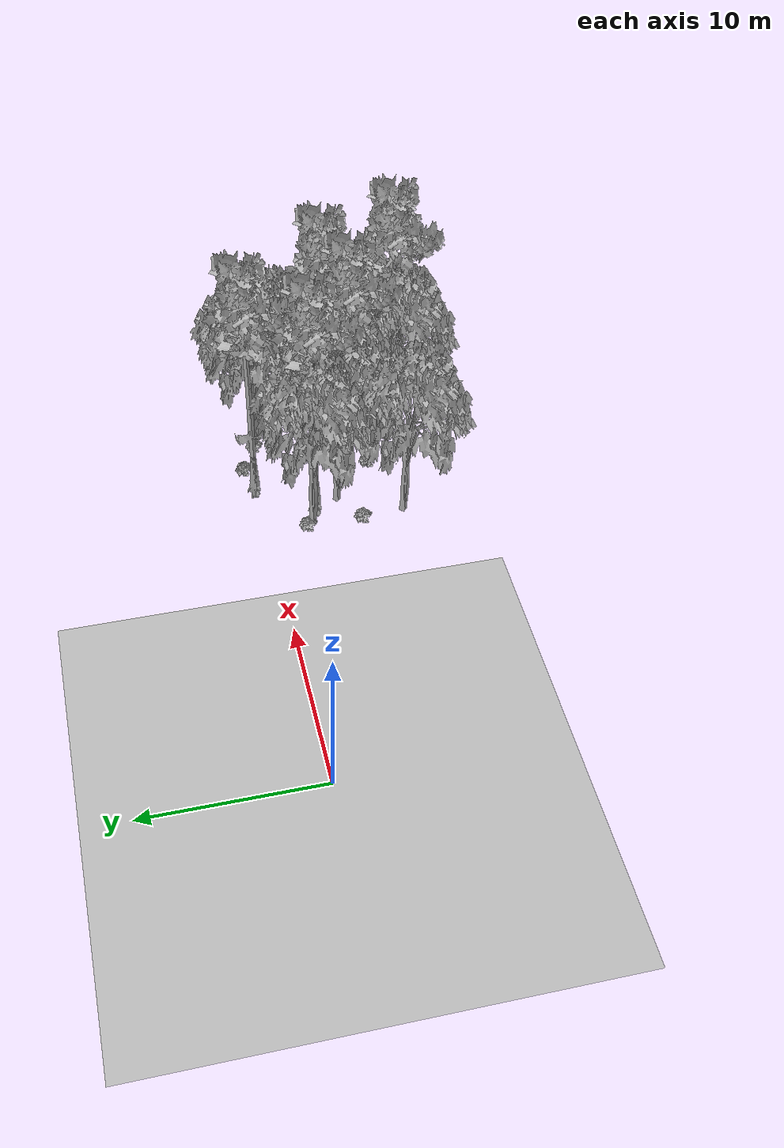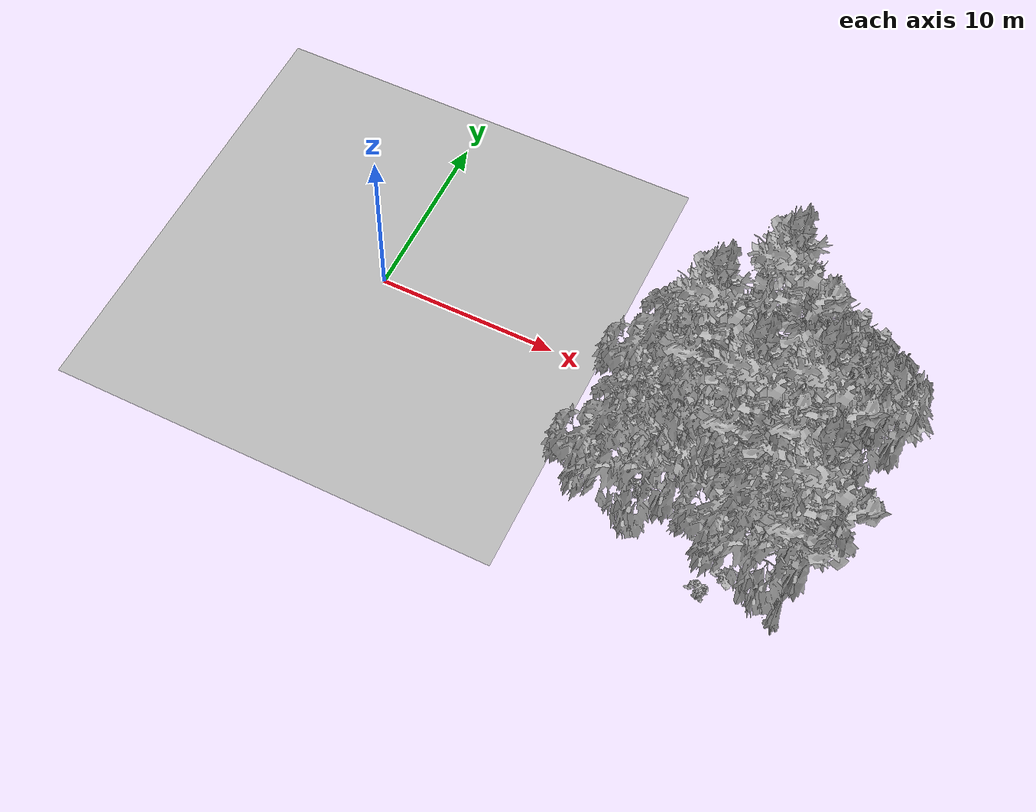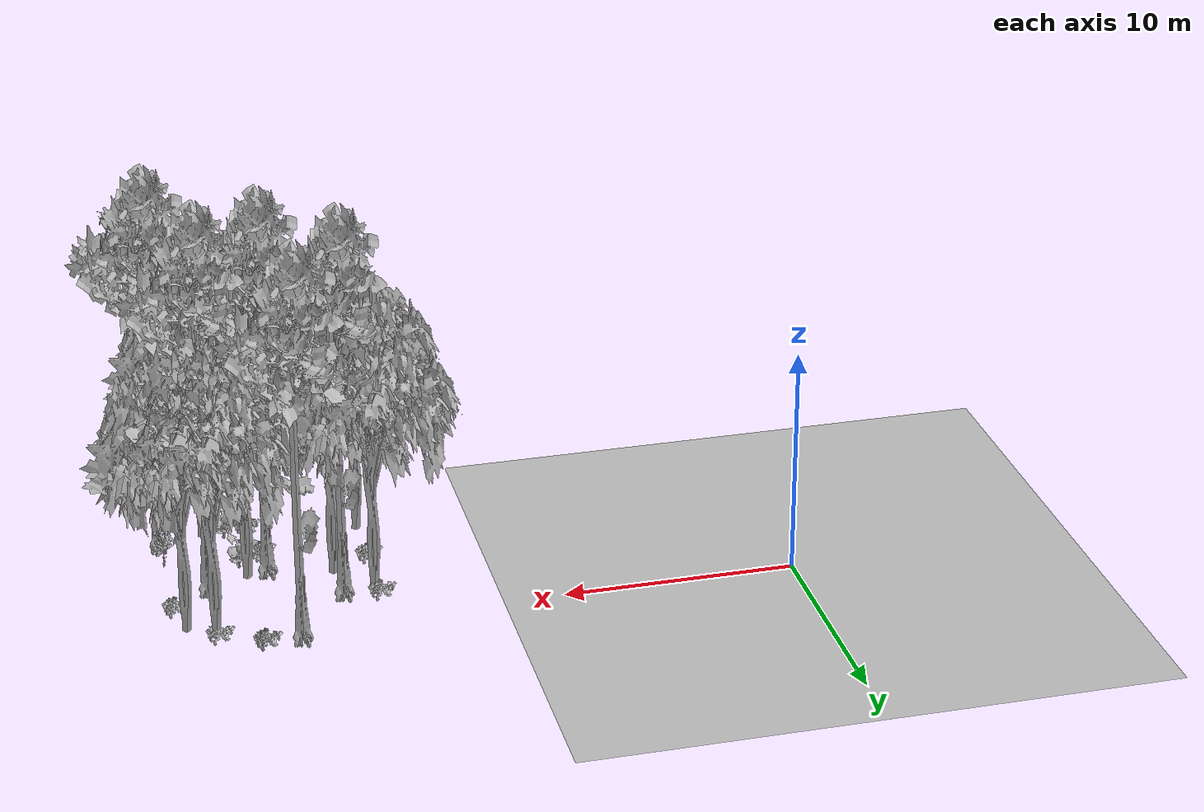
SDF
<sdf version="1.7">
 <world name="default">
  <model name="ground_plane">
   <static>1</static>
   <link name="link">
    <collision name="collision">
     <pose>-50 0 0 0 -0 0</pose>
     <geometry><plane><normal>0 0 1</normal><size>80 80</size></plane></geometry>
     <surface><contact><ode><min_depth>0.01</min_depth><max_vel>0</max_vel></ode></contact></surface>
    </collision>
    <visual name="grass">
     <cast_shadows>0</cast_shadows>
     <geometry>
      <mesh>
       <scale>0.46714285714285714 0.46714285714285714 0.1</scale>
       <uri>file://grass_plane/meshes/grass_plane.dae</uri>
      </mesh>
     </geometry>
    </visual>
   </link>
  </model>
  <model name="Tree 36">
   <static>1</static>
   <pose>21.743757851629162 -5.771117162902357 0 1.57079 -0 0</pose>
   <link name="link">
    <collision name="collision">
     <geometry><mesh><scale>3.5 5 3.5</scale><uri>model://tree_9/meshes/tree_9.obj</uri></mesh></geometry>
    </collision>
    <visual name="visual">
     <geometry><mesh><scale>3.5 5 3.5</scale><uri>model://tree_9/meshes/tree_9.obj</uri></mesh></geometry>
    </visual>
   </link>
  </model>
  <model name="Tree 39">
   <static>1</static>
   <pose>26.00094523964667 -9.195417841401785 0 1.57079 -0 0</pose>
   <link name="link">
    <collision name="collision">
     <geometry><mesh><scale>3.5 5 3.5</scale><uri>model://tree_9/meshes/tree_9.obj</uri></mesh></geometry>
    </collision>
    <visual name="visual">
     <geometry><mesh><scale>3.5 5 3.5</scale><uri>model://tree_9/meshes/tree_9.obj</uri></mesh></geometry>
    </visual>
   </link>
  </model>
  <model name="Tree 110">
   <static>1</static>
   <pose>21.15446894171616 0.1926579079944446 0 1.57079 -0 0</pose>
   <link name="link">
    <collision name="collision">
     <geometry><mesh><scale>3.5 5 3.5</scale><uri>model://tree_9/meshes/tree_9.obj</uri></mesh></geometry>
    </collision>
    <visual name="visual">
     <geometry><mesh><scale>3.5 5 3.5</scale><uri>model://tree_9/meshes/tree_9.obj</uri></mesh></geometry>
    </visual>
   </link>
  </model>
  <model name="Tree 111">
   <static>1</static>
   <pose>17.54752222481165 -2.6609374475497702 0 1.57079 -0 0</pose>
   <link name="link">
    <collision name="collision">
     <geometry><mesh><scale>3.5 5 3.5</scale><uri>model://tree_2/meshes/tree_2.obj</uri></mesh></geometry>
    </collision>
    <visual name="visual">
     <geometry><mesh><scale>3.5 5 3.5</scale><uri>model://tree_2/meshes/tree_2.obj</uri></mesh></geometry>
    </visual>
   </link>
  </model>
  <model name="Tree 133">
   <static>1</static>
   <pose>17.401166613023953 -8.038838436075189 0 1.57079 -0 0</pose>
   <link name="link">
    <collision name="collision">
     <geometry><mesh><scale>3.5 5 3.5</scale><uri>model://tree_2/meshes/tree_2.obj</uri></mesh></geometry>
    </collision>
    <visual name="visual">
     <geometry><mesh><scale>3.5 5 3.5</scale><uri>model://tree_2/meshes/tree_2.obj</uri></mesh></geometry>
    </visual>
   </link>
  </model>
  <model name="Tree 148">
   <static>1</static>
   <pose>24.523579480971684 -0.40755158940925185 0 1.57079 -0 0</pose>
   <link name="link">
    <collision name="collision">
     <geometry><mesh><scale>3.5 5 3.5</scale><uri>model://tree_2/meshes/tree_2.obj</uri></mesh></geometry>
    </collision>
    <visual name="visual">
     <geometry><mesh><scale>3.5 5 3.5</scale><uri>model://tree_2/meshes/tree_2.obj</uri></mesh></geometry>
    </visual>
   </link>
  </model>
  <model name="Tree 232">
   <static>1</static>
   <pose>25.66641420331686 -1.044151875145758 0 1.57079 -0 0</pose>
   <link name="link">
    <collision name="collision">
     <geometry><mesh><scale>3.5 5 3.5</scale><uri>model://tree_2/meshes/tree_2.obj</uri></mesh></geometry>
    </collision>
    <visual name="visual">
     <geometry><mesh><scale>3.5 5 3.5</scale><uri>model://tree_2/meshes/tree_2.obj</uri></mesh></geometry>
    </visual>
   </link>
  </model>
  <model name="Tree 245">
   <static>1</static>
   <pose>19.007637157955692 -4.400052109140503 0 1.57079 -0 0</pose>
   <link name="link">
    <collision name="collision">
     <geometry><mesh><scale>3.5 5 3.5</scale><uri>model://tree_2/meshes/tree_2.obj</uri></mesh></geometry>
    </collision>
    <visual name="visual">
     <geometry><mesh><scale>3.5 5 3.5</scale><uri>model://tree_2/meshes/tree_2.obj</uri></mesh></geometry>
    </visual>
   </link>
  </model>
  <model name="Tree 307">
   <static>1</static>
   <pose>24.415270132187366 -4.7697025099212595 0 1.57079 -0 0</pose>
   <link name="link">
    <collision name="collision">
     <geometry><mesh><scale>3.5 5 3.5</scale><uri>model://tree_9/meshes/tree_9.obj</uri></mesh></geometry>
    </collision>
    <visual name="visual">
     <geometry><mesh><scale>3.5 5 3.5</scale><uri>model://tree_9/meshes/tree_9.obj</uri></mesh></geometry>
    </visual>
   </link>
  </model>
  <model name="Tree 365">
   <static>1</static>
   <pose>24.030780956686094 -8.950130898567679 0 1.57079 -0 0</pose>
   <link name="link">
    <collision name="collision">
     <geometry><mesh><scale>3.5 5 3.5</scale><uri>model://tree_2/meshes/tree_2.obj</uri></mesh></geometry>
    </collision>
    <visual name="visual">
     <geometry><mesh><scale>3.5 5 3.5</scale><uri>model://tree_2/meshes/tree_2.obj</uri></mesh></geometry>
    </visual>
   </link>
  </model>
  <model name="Tree 516">
   <static>1</static>
   <pose>22.62191999161299 -4.856531003152483 0 1.57079 -0 0</pose>
   <link name="link">
    <collision name="collision">
     <geometry><mesh><scale>3.5 5 3.5</scale><uri>model://tree_2/meshes/tree_2.obj</uri></mesh></geometry>
    </collision>
    <visual name="visual">
     <geometry><mesh><scale>3.5 5 3.5</scale><uri>model://tree_2/meshes/tree_2.obj</uri></mesh></geometry>
    </visual>
   </link>
  </model>
  <model name="Tree 603">
   <static>1</static>
   <pose>18.873601403189866 -3.0641469445346132 0 1.57079 -0 0</pose>
   <link name="link">
    <collision name="collision">
     <geometry><mesh><scale>3.5 5 3.5</scale><uri>model://tree_9/meshes/tree_9.obj</uri></mesh></geometry>
    </collision>
    <visual name="visual">
     <geometry><mesh><scale>3.5 5 3.5</scale><uri>model://tree_9/meshes/tree_9.obj</uri></mesh></geometry>
    </visual>
   </link>
  </model>
  <model name="Bush 57">
   <static>1</static>
   <pose>22.66517615985382 0.5486103366692774 0 1.57079 -0 0</pose>
   <link name="link">
    <collision name="collision">
     <geometry><mesh><scale>2 2 2</scale><uri>model://bush_2/meshes/bush_2.obj</uri></mesh></geometry>
     <surface><contact><collide_without_contact>false</collide_without_contact></contact></surface>
    </collision>
    <visual name="visual">
     <geometry><mesh><scale>2 2 2</scale><uri>model://bush_2/meshes/bush_2.obj</uri></mesh></geometry>
    </visual>
   </link>
  </model>
  <model name="Bush 73">
   <static>1</static>
   <pose>26.071056840722832 -6.551185412750641 0 1.57079 -0 0</pose>
   <link name="link">
    <collision name="collision">
     <geometry><mesh><scale>2 2 2</scale><uri>model://bush_5/meshes/bush_5.obj</uri></mesh></geometry>
     <surface><contact><collide_without_contact>false</collide_without_contact></contact></surface>
    </collision>
    <visual name="visual">
     <geometry><mesh><scale>2 2 2</scale><uri>model://bush_5/meshes/bush_5.obj</uri></mesh></geometry>
    </visual>
   </link>
  </model>
  <model name="Bush 170">
   <static>1</static>
   <pose>22.15067859628016 -9.318946190416916 0 1.57079 -0 0</pose>
   <link name="link">
    <collision name="collision">
     <geometry><mesh><scale>2 2 2</scale><uri>model://bush_2/meshes/bush_2.obj</uri></mesh></geometry>
     <surface><contact><collide_without_contact>false</collide_without_contact></contact></surface>
    </collision>
    <visual name="visual">
     <geometry><mesh><scale>2 2 2</scale><uri>model://bush_2/meshes/bush_2.obj</uri></mesh></geometry>
    </visual>
   </link>
  </model>
  <model name="Bush 202">
   <static>1</static>
   <pose>22.954933594215298 -5.67193686969506 0 1.57079 -0 0</pose>
   <link name="link">
    <collision name="collision">
     <geometry><mesh><scale>2 2 2</scale><uri>model://bush_0/meshes/bush_0.obj</uri></mesh></geometry>
     <surface><contact><collide_without_contact>false</collide_without_contact></contact></surface>
    </collision>
    <visual name="visual">
     <geometry><mesh><scale>2 2 2</scale><uri>model://bush_0/meshes/bush_0.obj</uri></mesh></geometry>
    </visual>
   </link>
  </model>
  <model name="Bush 291">
   <static>1</static>
   <pose>17.38472821801915 -2.336334651185595 0 1.57079 -0 0</pose>
   <link name="link">
    <collision name="collision">
     <geometry><mesh><scale>2 2 2</scale><uri>model://bush_2/meshes/bush_2.obj</uri></mesh></geometry>
     <surface><contact><collide_without_contact>false</collide_without_contact></contact></surface>
    </collision>
    <visual name="visual">
     <geometry><mesh><scale>2 2 2</scale><uri>model://bush_2/meshes/bush_2.obj</uri></mesh></geometry>
    </visual>
   </link>
  </model>
  <model name="Bush 357">
   <static>1</static>
   <pose>17.38135107149288 -5.603716293038133 0 1.57079 -0 0</pose>
   <link name="link">
    <collision name="collision">
     <geometry><mesh><scale>2 2 2</scale><uri>model://bush_2/meshes/bush_2.obj</uri></mesh></geometry>
     <surface><contact><collide_without_contact>false</collide_without_contact></contact></surface>
    </collision>
    <visual name="visual">
     <geometry><mesh><scale>2 2 2</scale><uri>model://bush_2/meshes/bush_2.obj</uri></mesh></geometry>
    </visual>
   </link>
  </model>
  <model name="Bush 364">
   <static>1</static>
   <pose>21.819347418000383 -6.90176106541513 0 1.57079 -0 0</pose>
   <link name="link">
    <collision name="collision">
     <geometry><mesh><scale>2 2 2</scale><uri>model://bush_2/meshes/bush_2.obj</uri></mesh></geometry>
     <surface><contact><collide_without_contact>false</collide_without_contact></contact></surface>
    </collision>
    <visual name="visual">
     <geometry><mesh><scale>2 2 2</scale><uri>model://bush_2/meshes/bush_2.obj</uri></mesh></geometry>
    </visual>
   </link>
  </model>
  <model name="Bush 490">
   <static>1</static>
   <pose>24.48705124523778 -0.36261554338787505 0 1.57079 -0 0</pose>
   <link name="link">
    <collision name="collision">
     <geometry><mesh><scale>2 2 2</scale><uri>model://bush_2/meshes/bush_2.obj</uri></mesh></geometry>
     <surface><contact><collide_without_contact>false</collide_without_contact></contact></surface>
    </collision>
    <visual name="visual">
     <geometry><mesh><scale>2 2 2</scale><uri>model://bush_2/meshes/bush_2.obj</uri></mesh></geometry>
    </visual>
   </link>
  </model>
  <model name="Bush 506">
   <static>1</static>
   <pose>23.23683467494304 -8.4388440232281 0 1.57079 -0 0</pose>
   <link name="link">
    <collision name="collision">
     <geometry><mesh><scale>2 2 2</scale><uri>model://bush_0/meshes/bush_0.obj</uri></mesh></geometry>
     <surface><contact><collide_without_contact>false</collide_without_contact></contact></surface>
    </collision>
    <visual name="visual">
     <geometry><mesh><scale>2 2 2</scale><uri>model://bush_0/meshes/bush_0.obj</uri></mesh></geometry>
    </visual>
   </link>
  </model>
  <model name="Bush 571">
   <static>1</static>
   <pose>22.65034718656286 0.5650381570728058 0 1.57079 -0 0</pose>
   <link name="link">
    <collision name="collision">
     <geometry><mesh><scale>2 2 2</scale><uri>model://bush_2/meshes/bush_2.obj</uri></mesh></geometry>
     <surface><contact><collide_without_contact>false</collide_without_contact></contact></surface>
    </collision>
    <visual name="visual">
     <geometry><mesh><scale>2 2 2</scale><uri>model://bush_2/meshes/bush_2.obj</uri></mesh></geometry>
    </visual>
   </link>
  </model>
  <model name="Bush 589">
   <static>1</static>
   <pose>25.985914947244453 -2.9815630149653956 0 1.57079 -0 0</pose>
   <link name="link">
    <collision name="collision">
     <geometry><mesh><scale>2 2 2</scale><uri>model://bush_2/meshes/bush_2.obj</uri></mesh></geometry>
     <surface><contact><collide_without_contact>false</collide_without_contact></contact></surface>
    </collision>
    <visual name="visual">
     <geometry><mesh><scale>2 2 2</scale><uri>model://bush_2/meshes/bush_2.obj</uri></mesh></geometry>
    </visual>
   </link>
  </model>
 </world>
</sdf>
